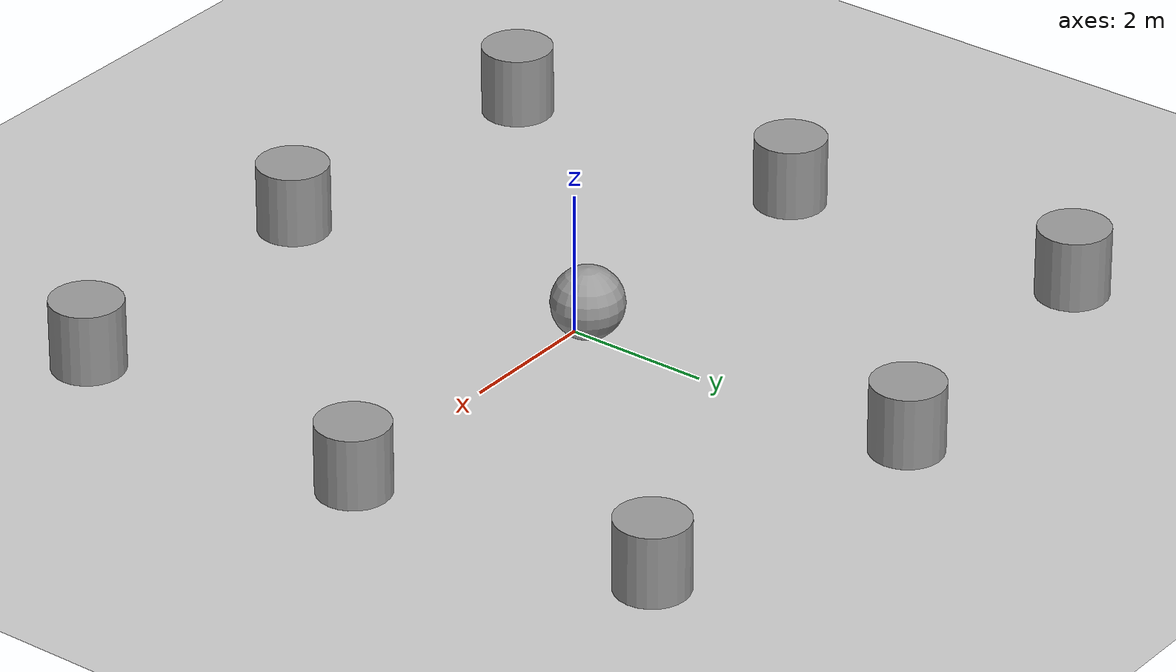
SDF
<sdf version="1.6">
 <world name="default">
  <light name="sun" type="directional">
   <pose>0 0 10 0 -0 0</pose>
   <diffuse>0.8 0.8 0.8 1</diffuse>
   <specular>0.1 0.1 0.1 1</specular>
   <attenuation>
    <range>1000</range>
    <constant>0.9</constant>
    <linear>0.01</linear>
    <quadratic>0.001</quadratic>
   </attenuation>
   <direction>-0.5 0.5 -1</direction>
  </light>
  <model name="ground_plane">
   <static>1</static>
   <link name="link">
    <collision name="collision">
     <geometry><plane><normal>0 0 1</normal><size>100 100</size></plane></geometry>
     <surface><friction><ode><mu>100</mu><mu2>50</mu2></ode></friction></surface>
    </collision>
    <visual name="visual">
     <cast_shadows>0</cast_shadows>
     <geometry><plane><normal>0 0 1</normal><size>100 100</size></plane></geometry>
     <material>
      <script><uri>file://media/materials/scripts/gazebo.material</uri><name>Gazebo/Grey</name></script>
     </material>
    </visual>
   </link>
  </model>
  <gravity>0 0 -9.8</gravity>
  <magnetic_field>6e-06 2.3e-05 -4.2e-05</magnetic_field>
  <atmosphere type="adiabatic"/>
  <physics name="default_physics" default="0" type="ode">
   <max_step_size>0.001</max_step_size>
   <real_time_factor>1</real_time_factor>
   <real_time_update_rate>1000</real_time_update_rate>
  </physics>
  <scene><ambient>0.4 0.4 0.4 1</ambient><background>0.7 0.7 0.7 1</background><shadows>1</shadows></scene>
  <spherical_coordinates>
   <surface_model>EARTH_WGS84</surface_model>
   <latitude_deg>0</latitude_deg>
   <longitude_deg>0</longitude_deg>
   <elevation>0</elevation>
   <heading_deg>0</heading_deg>
  </spherical_coordinates>
  <model name="unit_cylinder_0_0">
   <pose>-4.44446 -4.38387 0.499992 -3e-06 3e-06 0</pose>
   <link name="link">
    <inertial>
     <mass>1</mass>
     <inertia><ixx>0.145833</ixx><ixy>0</ixy><ixz>0</ixz><iyy>0.145833</iyy><iyz>0</iyz><izz>0.125</izz></inertia>
    </inertial>
    <collision name="collision">
     <geometry><cylinder><radius>0.5</radius><length>1</length></cylinder></geometry>
    </collision>
    <visual name="visual">
     <geometry><cylinder><radius>0.5</radius><length>1</length></cylinder></geometry>
     <material>
      <script><name>Gazebo/Grey</name><uri>file://media/materials/scripts/gazebo.material</uri></script>
     </material>
    </visual>
   </link>
  </model>
  <model name="unit_cylinder_0_1">
   <pose>-4.76937 4.57841 0.499998 3e-06 -3e-06 0</pose>
   <link name="link">
    <inertial>
     <mass>1</mass>
     <inertia><ixx>0.145833</ixx><ixy>0</ixy><ixz>0</ixz><iyy>0.145833</iyy><iyz>0</iyz><izz>0.125</izz></inertia>
    </inertial>
    <collision name="collision">
     <geometry><cylinder><radius>0.5</radius><length>1</length></cylinder></geometry>
    </collision>
    <visual name="visual">
     <geometry><cylinder><radius>0.5</radius><length>1</length></cylinder></geometry>
     <material>
      <script><name>Gazebo/Grey</name><uri>file://media/materials/scripts/gazebo.material</uri></script>
     </material>
    </visual>
   </link>
  </model>
  <model name="unit_cylinder_0_2">
   <pose>4.51669 -4.4293 0.499992 -3e-06 3e-06 0</pose>
   <link name="link">
    <inertial>
     <mass>1</mass>
     <inertia><ixx>0.145833</ixx><ixy>0</ixy><ixz>0</ixz><iyy>0.145833</iyy><iyz>0</iyz><izz>0.125</izz></inertia>
    </inertial>
    <collision name="collision">
     <geometry><cylinder><radius>0.5</radius><length>1</length></cylinder></geometry>
    </collision>
    <visual name="visual">
     <geometry><cylinder><radius>0.5</radius><length>1</length></cylinder></geometry>
     <material>
      <script><name>Gazebo/Grey</name><uri>file://media/materials/scripts/gazebo.material</uri></script>
     </material>
    </visual>
   </link>
  </model>
  <model name="unit_cylinder_0_3">
   <pose>4.44069 4.57177 0.499998 3e-06 -3e-06 0</pose>
   <link name="link">
    <inertial>
     <mass>1</mass>
     <inertia><ixx>0.145833</ixx><ixy>0</ixy><ixz>0</ixz><iyy>0.145833</iyy><iyz>0</iyz><izz>0.125</izz></inertia>
    </inertial>
    <collision name="collision">
     <geometry><cylinder><radius>0.5</radius><length>1</length></cylinder></geometry>
    </collision>
    <visual name="visual">
     <geometry><cylinder><radius>0.5</radius><length>1</length></cylinder></geometry>
     <material>
      <script><name>Gazebo/Grey</name><uri>file://media/materials/scripts/gazebo.material</uri></script>
     </material>
    </visual>
   </link>
  </model>
  <model name="unit_cylinder_0_5">
   <pose>-4.56543 0.158976 0.499992 -3e-06 4e-06 0</pose>
   <link name="link">
    <inertial>
     <mass>1</mass>
     <inertia><ixx>0.145833</ixx><ixy>0</ixy><ixz>0</ixz><iyy>0.145833</iyy><iyz>0</iyz><izz>0.125</izz></inertia>
    </inertial>
    <collision name="collision">
     <geometry><cylinder><radius>0.5</radius><length>1</length></cylinder></geometry>
    </collision>
    <visual name="visual">
     <geometry><cylinder><radius>0.5</radius><length>1</length></cylinder></geometry>
     <material>
      <script><name>Gazebo/Grey</name><uri>file://media/materials/scripts/gazebo.material</uri></script>
     </material>
    </visual>
   </link>
  </model>
  <model name="unit_cylinder_0_6">
   <pose>-0.142775 5.15327 0.499998 3e-06 -4e-06 0</pose>
   <link name="link">
    <inertial>
     <mass>1</mass>
     <inertia><ixx>0.145833</ixx><ixy>0</ixy><ixz>0</ixz><iyy>0.145833</iyy><iyz>0</iyz><izz>0.125</izz></inertia>
    </inertial>
    <collision name="collision">
     <geometry><cylinder><radius>0.5</radius><length>1</length></cylinder></geometry>
    </collision>
    <visual name="visual">
     <geometry><cylinder><radius>0.5</radius><length>1</length></cylinder></geometry>
     <material>
      <script><name>Gazebo/Grey</name><uri>file://media/materials/scripts/gazebo.material</uri></script>
     </material>
    </visual>
   </link>
  </model>
  <model name="unit_cylinder_0_7">
   <pose>4.85044 0.235797 0.499992 -3e-06 -4e-06 -0</pose>
   <link name="link">
    <inertial>
     <mass>1</mass>
     <inertia><ixx>0.145833</ixx><ixy>0</ixy><ixz>0</ixz><iyy>0.145833</iyy><iyz>0</iyz><izz>0.125</izz></inertia>
    </inertial>
    <collision name="collision">
     <geometry><cylinder><radius>0.5</radius><length>1</length></cylinder></geometry>
    </collision>
    <visual name="visual">
     <geometry><cylinder><radius>0.5</radius><length>1</length></cylinder></geometry>
     <material>
      <script><name>Gazebo/Grey</name><uri>file://media/materials/scripts/gazebo.material</uri></script>
     </material>
    </visual>
   </link>
  </model>
  <model name="unit_cylinder_0_8">
   <pose>0.05719 -4.67525 0.499993 -3e-06 -3e-06 0</pose>
   <link name="link">
    <inertial>
     <mass>1</mass>
     <inertia><ixx>0.145833</ixx><ixy>0</ixy><ixz>0</ixz><iyy>0.145833</iyy><iyz>0</iyz><izz>0.125</izz></inertia>
    </inertial>
    <collision name="collision">
     <geometry><cylinder><radius>0.5</radius><length>1</length></cylinder></geometry>
    </collision>
    <visual name="visual">
     <geometry><cylinder><radius>0.5</radius><length>1</length></cylinder></geometry>
     <material>
      <script><name>Gazebo/Grey</name><uri>file://media/materials/scripts/gazebo.material</uri></script>
     </material>
    </visual>
   </link>
  </model>
  <model name="unit_sphere_0">
   <pose>-0.022141 0.197442 0.5 0 -0 0</pose>
   <link name="link">
    <inertial>
     <mass>1</mass>
     <inertia><ixx>0.1</ixx><ixy>0</ixy><ixz>0</ixz><iyy>0.1</iyy><iyz>0</iyz><izz>0.1</izz></inertia>
    </inertial>
    <collision name="collision"><geometry><sphere><radius>0.5</radius></sphere></geometry></collision>
    <visual name="visual">
     <geometry><sphere><radius>0.5</radius></sphere></geometry>
     <material>
      <script><name>Gazebo/Grey</name><uri>file://media/materials/scripts/gazebo.material</uri></script>
     </material>
    </visual>
   </link>
  </model>
 </world>
</sdf>
